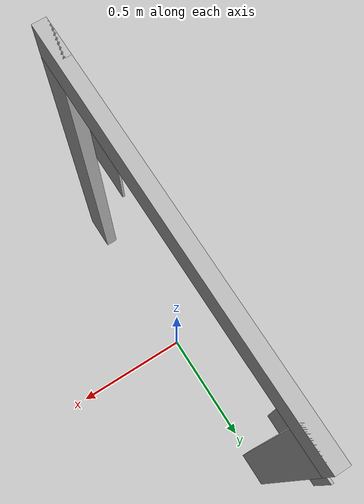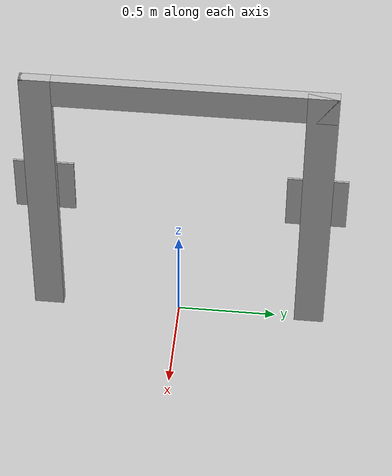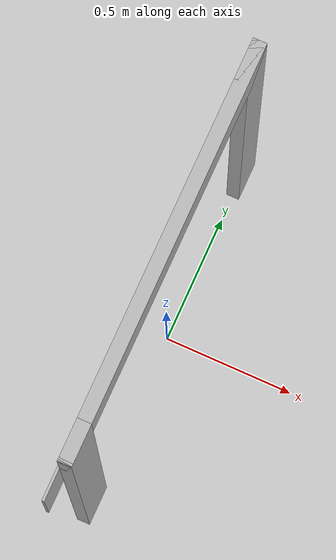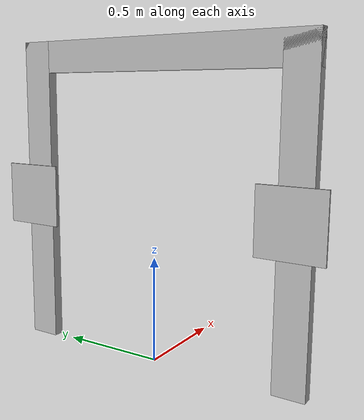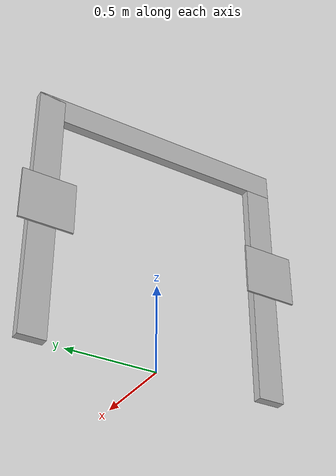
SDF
<?xml version="1.0" ?>
<sdf version="1.6">
  <model name="gate_00">
    <static>true</static>

    <!-- Frame -->

    <link name="bar_top">
      <pose>0 0 1.425 0 0 0</pose>
      <visual name="top">
        <geometry><box><size>0.05 1.5 0.15</size></box></geometry>
      </visual>
    </link>

    <link name="bar_left">
      <pose>0 0.675 0.75 0 0 0</pose>
      <visual name="left">
        <geometry><box><size>0.05 0.15 1.5</size></box></geometry>
      </visual>
    </link>

    <link name="bar_right">
      <pose>0 -0.675 0.75 0 0 0</pose>
      <visual name="right">
        <geometry><box><size>0.05 0.15 1.5</size></box></geometry>
      </visual>
    </link>

    <!-- Tags -->
    <include>
      <uri>model://apriltag_36h11_00</uri>
      <name>tag0</name>
      <pose>-0.075 0.675 0.75 0 0 -1.5708</pose>
    </include>

    <include>
      <uri>model://apriltag_36h11_01</uri>
      <name>tag1</name>
      <pose>-0.075 -0.675 0.75 0 0 1.5708</pose>
    </include>

  </model>
</sdf>

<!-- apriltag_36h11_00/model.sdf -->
<sdf version='1.6'>
  <model name='apriltag_36h11_00'>
    <static>true</static>
    <link name='link'>
      <pose>0 0 0 0 0 0</pose>
      <visual name='visual'>
        <geometry>
          <box>
            <size>0.3 0.01 0.3</size>  <!-- width, depth, height -->
          </box>
        </geometry>
        <material>
          <script>
            <uri>model://apriltag_36h11_00/materials/scripts</uri>
            <uri>model://apriltag_36h11_00/materials/textures</uri>
            <name>apriltag_36h11_00</name>
          </script>
        </material>
      </visual>
      <collision name="collision">
        <geometry>
          <box>
            <size>0.3 0.01 0.3</size>
          </box>
        </geometry>
      </collision>
    </link>
  </model>
</sdf>

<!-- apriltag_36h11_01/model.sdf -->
<sdf version='1.6'>
  <model name='apriltag_36h11_01'>
    <static>true</static>
    <link name='link'>
      <pose>0 0 0 0 0 0</pose>
      <visual name='visual'>
        <geometry>
          <box>
            <size>0.3 0.01 0.3</size>  <!-- width, depth, height -->
          </box>
        </geometry>
        <material>
          <script>
            <uri>model://apriltag_36h11_01/materials/scripts</uri>
            <uri>model://apriltag_36h11_01/materials/textures</uri>
            <name>apriltag_36h11_01</name>
          </script>
        </material>
      </visual>
      <collision name="collision">
        <geometry>
          <box>
            <size>0.3 0.01 0.3</size>
          </box>
        </geometry>
      </collision>
    </link>
  </model>
</sdf>
